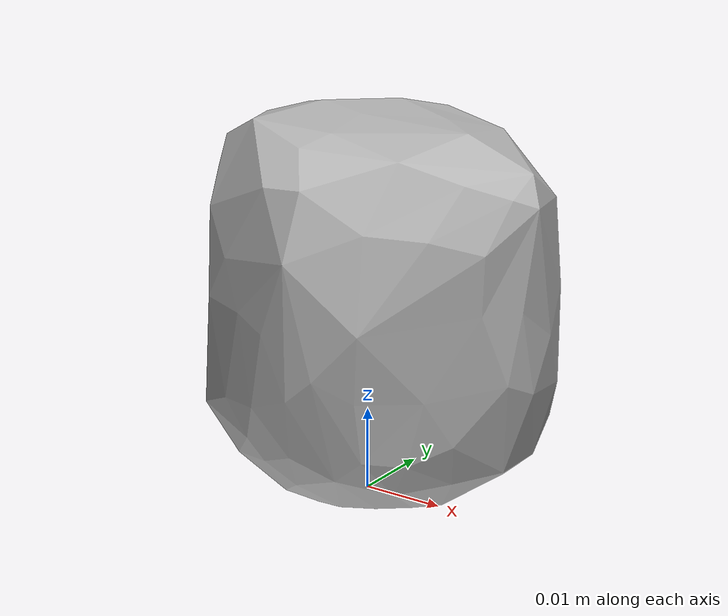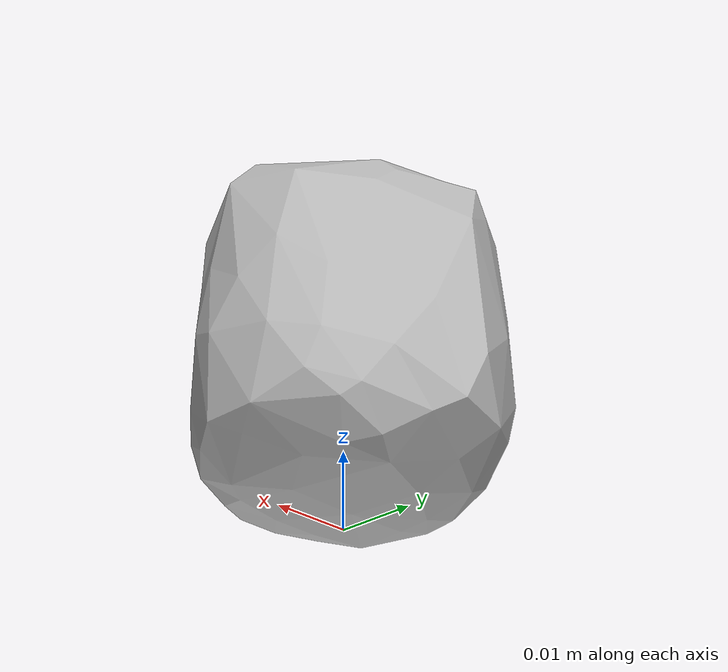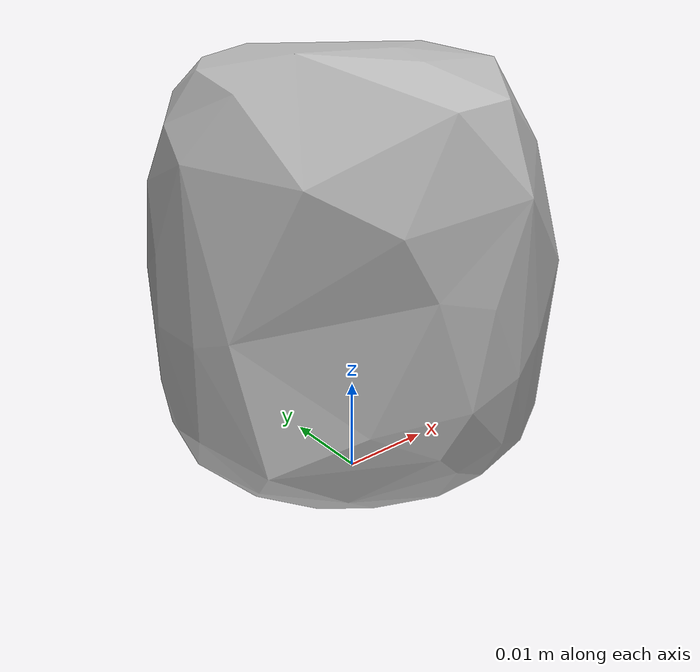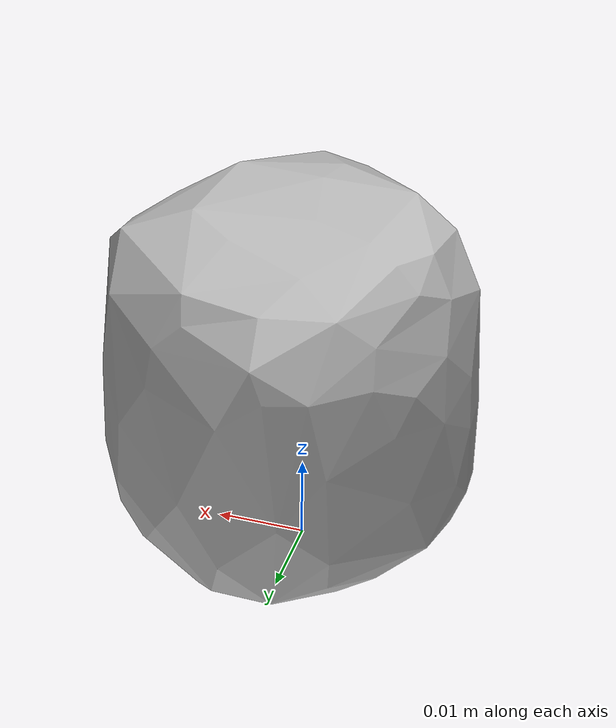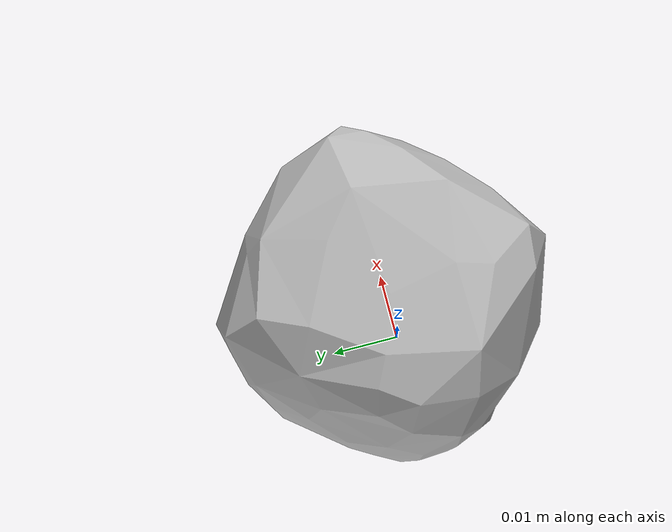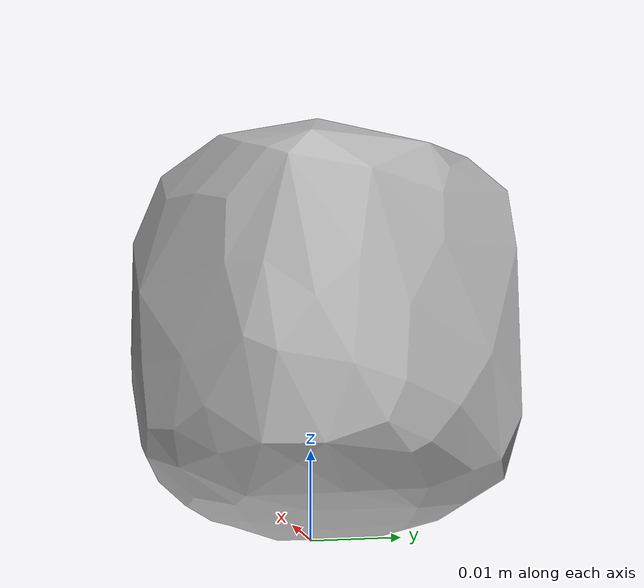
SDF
<?xml version='1.0'?>
<sdf version="1.4">
  <model name="073-l_lego_duplo">
    <static>false</static>
    <link name="link">
      <inertial>
        <pose>0.0008296382342836018 0.0017488678278949122 0.023179221775476353 3.077721566853538 0.008230046997084569 2.678925995964704</pose>
        <mass>0.0049725366523676795</mass>
        <inertia>
          <ixx>1.1242044447303893e-06</ixx>
          <ixy>2.056262350431567e-22</ixy>
          <ixz>-6.251119848366883e-23</ixz>
          <iyy>1.1035898768397273e-06</iyy>
          <iyz>-1.3182934282857777e-22</iyz>
          <izz>9.531503045004443e-07</izz>
        </inertia>
      </inertial>
      <collision name="collision">
        <geometry>
          <mesh>
            <!-- Use a downsampled mesh for collisions -->
            <uri>model:///073-l_lego_duplo/073-l_lego_duplo_250_collision.stl</uri>
	        </mesh>
        </geometry>
        <surface>
      </surface>
      </collision>
      <visual name="visual">
        <geometry>
          <mesh>
            <uri>model:///073-l_lego_duplo/textured.obj</uri>
	        </mesh>
        </geometry>
        <material>
          <script>
            <uri>model:///073-l_lego_duplo/073-l_lego_duplo.material</uri>
            <name>073-l_lego_duplo</name>
          </script>
        </material>
      </visual>
    </link>
  </model>
</sdf>
